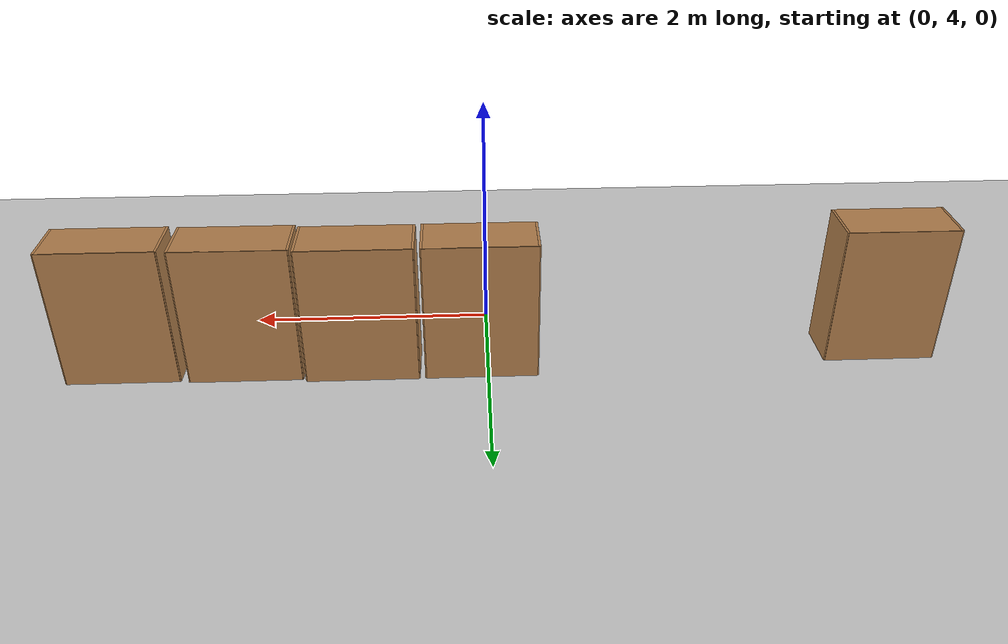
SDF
<sdf version="1.7">
 <world name="default">
  <model name="ground_plane">
   <static>1</static>
   <link name="link">
    <collision name="collision">
     <geometry><plane><normal>0 0 1</normal><size>100 100</size></plane></geometry>
     <surface><friction><ode><mu>100</mu><mu2>50</mu2></ode></friction></surface>
    </collision>
    <visual name="visual">
     <cast_shadows>0</cast_shadows>
     <geometry><plane><normal>0 0 1</normal><size>100 100</size></plane></geometry>
     <material>
      <script><uri>file://media/materials/scripts/gazebo.material</uri><name>Gazebo/Grey</name></script>
     </material>
    </visual>
   </link>
  </model>
  <model name="bookshelf">
   <static>1</static>
   <link name="link">
    <inertial><mass>1</mass></inertial>
    <collision name="back">
     <pose>0 0.005 0.6 0 -0 0</pose>
     <geometry><box><size>0.9 0.01 1.2</size></box></geometry>
    </collision>
    <visual name="visual1">
     <pose>0 0.005 0.6 0 -0 0</pose>
     <geometry><box><size>0.9 0.01 1.2</size></box></geometry>
     <material>
      <script><uri>file://media/materials/scripts/gazebo.material</uri><name>Gazebo/Wood</name></script>
     </material>
    </visual>
    <collision name="left_side">
     <pose>0.45 -0.195 0.6 0 -0 0</pose>
     <geometry><box><size>0.02 0.4 1.2</size></box></geometry>
    </collision>
    <visual name="visual2">
     <pose>0.45 -0.195 0.6 0 -0 0</pose>
     <geometry><box><size>0.02 0.4 1.2</size></box></geometry>
     <material>
      <script><uri>file://media/materials/scripts/gazebo.material</uri><name>Gazebo/Wood</name></script>
     </material>
    </visual>
    <collision name="right_side">
     <pose>-0.45 -0.195 0.6 0 -0 0</pose>
     <geometry><box><size>0.02 0.4 1.2</size></box></geometry>
    </collision>
    <visual name="visual3">
     <pose>-0.45 -0.195 0.6 0 -0 0</pose>
     <geometry><box><size>0.02 0.4 1.2</size></box></geometry>
     <material>
      <script><uri>file://media/materials/scripts/gazebo.material</uri><name>Gazebo/Wood</name></script>
     </material>
    </visual>
    <collision name="bottom">
     <pose>0 -0.195 0.03 0 -0 0</pose>
     <geometry><box><size>0.88 0.4 0.06</size></box></geometry>
    </collision>
    <visual name="visual4">
     <pose>0 -0.195 0.03 0 -0 0</pose>
     <geometry><box><size>0.88 0.4 0.06</size></box></geometry>
     <material>
      <script><uri>file://media/materials/scripts/gazebo.material</uri><name>Gazebo/Wood</name></script>
     </material>
    </visual>
    <collision name="top">
     <pose>0 -0.195 1.19 0 -0 0</pose>
     <geometry><box><size>0.88 0.4 0.02</size></box></geometry>
    </collision>
    <visual name="visual5">
     <pose>0 -0.195 1.19 0 -0 0</pose>
     <geometry><box><size>0.88 0.4 0.02</size></box></geometry>
     <material>
      <script><uri>file://media/materials/scripts/gazebo.material</uri><name>Gazebo/Wood</name></script>
     </material>
    </visual>
    <collision name="low_shelf">
     <pose>0 -0.195 0.43 0 -0 0</pose>
     <geometry><box><size>0.88 0.4 0.02</size></box></geometry>
    </collision>
    <visual name="visual6">
     <pose>0 -0.195 0.43 0 -0 0</pose>
     <geometry><box><size>0.88 0.4 0.02</size></box></geometry>
     <material>
      <script><uri>file://media/materials/scripts/gazebo.material</uri><name>Gazebo/Wood</name></script>
     </material>
    </visual>
    <collision name="high_shelf">
     <pose>0 -0.195 0.8 0 -0 0</pose>
     <geometry><box><size>0.88 0.4 0.02</size></box></geometry>
    </collision>
    <visual name="visual7">
     <pose>0 -0.195 0.8 0 -0 0</pose>
     <geometry><box><size>0.88 0.4 0.02</size></box></geometry>
     <material>
      <script><uri>file://media/materials/scripts/gazebo.material</uri><name>Gazebo/Wood</name></script>
     </material>
    </visual>
   </link>
   <pose>0.052357 4.90916 0 0 -0 0</pose>
  </model>
  <model name="bookshelf_clone">
   <static>1</static>
   <link name="link">
    <inertial><mass>1</mass></inertial>
    <collision name="back">
     <pose>0 0.005 0.6 0 -0 0</pose>
     <geometry><box><size>0.9 0.01 1.2</size></box></geometry>
    </collision>
    <visual name="visual1">
     <pose>0 0.005 0.6 0 -0 0</pose>
     <geometry><box><size>0.9 0.01 1.2</size></box></geometry>
     <material>
      <script><uri>file://media/materials/scripts/gazebo.material</uri><name>Gazebo/Wood</name></script>
     </material>
    </visual>
    <collision name="left_side">
     <pose>0.45 -0.195 0.6 0 -0 0</pose>
     <geometry><box><size>0.02 0.4 1.2</size></box></geometry>
    </collision>
    <visual name="visual2">
     <pose>0.45 -0.195 0.6 0 -0 0</pose>
     <geometry><box><size>0.02 0.4 1.2</size></box></geometry>
     <material>
      <script><uri>file://media/materials/scripts/gazebo.material</uri><name>Gazebo/Wood</name></script>
     </material>
    </visual>
    <collision name="right_side">
     <pose>-0.45 -0.195 0.6 0 -0 0</pose>
     <geometry><box><size>0.02 0.4 1.2</size></box></geometry>
    </collision>
    <visual name="visual3">
     <pose>-0.45 -0.195 0.6 0 -0 0</pose>
     <geometry><box><size>0.02 0.4 1.2</size></box></geometry>
     <material>
      <script><uri>file://media/materials/scripts/gazebo.material</uri><name>Gazebo/Wood</name></script>
     </material>
    </visual>
    <collision name="bottom">
     <pose>0 -0.195 0.03 0 -0 0</pose>
     <geometry><box><size>0.88 0.4 0.06</size></box></geometry>
    </collision>
    <visual name="visual4">
     <pose>0 -0.195 0.03 0 -0 0</pose>
     <geometry><box><size>0.88 0.4 0.06</size></box></geometry>
     <material>
      <script><uri>file://media/materials/scripts/gazebo.material</uri><name>Gazebo/Wood</name></script>
     </material>
    </visual>
    <collision name="top">
     <pose>0 -0.195 1.19 0 -0 0</pose>
     <geometry><box><size>0.88 0.4 0.02</size></box></geometry>
    </collision>
    <visual name="visual5">
     <pose>0 -0.195 1.19 0 -0 0</pose>
     <geometry><box><size>0.88 0.4 0.02</size></box></geometry>
     <material>
      <script><uri>file://media/materials/scripts/gazebo.material</uri><name>Gazebo/Wood</name></script>
     </material>
    </visual>
    <collision name="low_shelf">
     <pose>0 -0.195 0.43 0 -0 0</pose>
     <geometry><box><size>0.88 0.4 0.02</size></box></geometry>
    </collision>
    <visual name="visual6">
     <pose>0 -0.195 0.43 0 -0 0</pose>
     <geometry><box><size>0.88 0.4 0.02</size></box></geometry>
     <material>
      <script><uri>file://media/materials/scripts/gazebo.material</uri><name>Gazebo/Wood</name></script>
     </material>
    </visual>
    <collision name="high_shelf">
     <pose>0 -0.195 0.8 0 -0 0</pose>
     <geometry><box><size>0.88 0.4 0.02</size></box></geometry>
    </collision>
    <visual name="visual7">
     <pose>0 -0.195 0.8 0 -0 0</pose>
     <geometry><box><size>0.88 0.4 0.02</size></box></geometry>
     <material>
      <script><uri>file://media/materials/scripts/gazebo.material</uri><name>Gazebo/Wood</name></script>
     </material>
    </visual>
   </link>
   <pose>1.01366 4.91194 0 0 -0 0</pose>
  </model>
  <model name="bookshelf_clone_0">
   <static>1</static>
   <link name="link">
    <inertial><mass>1</mass></inertial>
    <collision name="back">
     <pose>0 0.005 0.6 0 -0 0</pose>
     <geometry><box><size>0.9 0.01 1.2</size></box></geometry>
    </collision>
    <visual name="visual1">
     <pose>0 0.005 0.6 0 -0 0</pose>
     <geometry><box><size>0.9 0.01 1.2</size></box></geometry>
     <material>
      <script><uri>file://media/materials/scripts/gazebo.material</uri><name>Gazebo/Wood</name></script>
     </material>
    </visual>
    <collision name="left_side">
     <pose>0.45 -0.195 0.6 0 -0 0</pose>
     <geometry><box><size>0.02 0.4 1.2</size></box></geometry>
    </collision>
    <visual name="visual2">
     <pose>0.45 -0.195 0.6 0 -0 0</pose>
     <geometry><box><size>0.02 0.4 1.2</size></box></geometry>
     <material>
      <script><uri>file://media/materials/scripts/gazebo.material</uri><name>Gazebo/Wood</name></script>
     </material>
    </visual>
    <collision name="right_side">
     <pose>-0.45 -0.195 0.6 0 -0 0</pose>
     <geometry><box><size>0.02 0.4 1.2</size></box></geometry>
    </collision>
    <visual name="visual3">
     <pose>-0.45 -0.195 0.6 0 -0 0</pose>
     <geometry><box><size>0.02 0.4 1.2</size></box></geometry>
     <material>
      <script><uri>file://media/materials/scripts/gazebo.material</uri><name>Gazebo/Wood</name></script>
     </material>
    </visual>
    <collision name="bottom">
     <pose>0 -0.195 0.03 0 -0 0</pose>
     <geometry><box><size>0.88 0.4 0.06</size></box></geometry>
    </collision>
    <visual name="visual4">
     <pose>0 -0.195 0.03 0 -0 0</pose>
     <geometry><box><size>0.88 0.4 0.06</size></box></geometry>
     <material>
      <script><uri>file://media/materials/scripts/gazebo.material</uri><name>Gazebo/Wood</name></script>
     </material>
    </visual>
    <collision name="top">
     <pose>0 -0.195 1.19 0 -0 0</pose>
     <geometry><box><size>0.88 0.4 0.02</size></box></geometry>
    </collision>
    <visual name="visual5">
     <pose>0 -0.195 1.19 0 -0 0</pose>
     <geometry><box><size>0.88 0.4 0.02</size></box></geometry>
     <material>
      <script><uri>file://media/materials/scripts/gazebo.material</uri><name>Gazebo/Wood</name></script>
     </material>
    </visual>
    <collision name="low_shelf">
     <pose>0 -0.195 0.43 0 -0 0</pose>
     <geometry><box><size>0.88 0.4 0.02</size></box></geometry>
    </collision>
    <visual name="visual6">
     <pose>0 -0.195 0.43 0 -0 0</pose>
     <geometry><box><size>0.88 0.4 0.02</size></box></geometry>
     <material>
      <script><uri>file://media/materials/scripts/gazebo.material</uri><name>Gazebo/Wood</name></script>
     </material>
    </visual>
    <collision name="high_shelf">
     <pose>0 -0.195 0.8 0 -0 0</pose>
     <geometry><box><size>0.88 0.4 0.02</size></box></geometry>
    </collision>
    <visual name="visual7">
     <pose>0 -0.195 0.8 0 -0 0</pose>
     <geometry><box><size>0.88 0.4 0.02</size></box></geometry>
     <material>
      <script><uri>file://media/materials/scripts/gazebo.material</uri><name>Gazebo/Wood</name></script>
     </material>
    </visual>
   </link>
   <pose>1.95405 4.88392 0 0 -0 0</pose>
  </model>
  <model name="bookshelf_clone_1">
   <static>1</static>
   <link name="link">
    <inertial><mass>1</mass></inertial>
    <collision name="back">
     <pose>0 0.005 0.6 0 -0 0</pose>
     <geometry><box><size>0.9 0.01 1.2</size></box></geometry>
    </collision>
    <visual name="visual1">
     <pose>0 0.005 0.6 0 -0 0</pose>
     <geometry><box><size>0.9 0.01 1.2</size></box></geometry>
     <material>
      <script><uri>file://media/materials/scripts/gazebo.material</uri><name>Gazebo/Wood</name></script>
     </material>
    </visual>
    <collision name="left_side">
     <pose>0.45 -0.195 0.6 0 -0 0</pose>
     <geometry><box><size>0.02 0.4 1.2</size></box></geometry>
    </collision>
    <visual name="visual2">
     <pose>0.45 -0.195 0.6 0 -0 0</pose>
     <geometry><box><size>0.02 0.4 1.2</size></box></geometry>
     <material>
      <script><uri>file://media/materials/scripts/gazebo.material</uri><name>Gazebo/Wood</name></script>
     </material>
    </visual>
    <collision name="right_side">
     <pose>-0.45 -0.195 0.6 0 -0 0</pose>
     <geometry><box><size>0.02 0.4 1.2</size></box></geometry>
    </collision>
    <visual name="visual3">
     <pose>-0.45 -0.195 0.6 0 -0 0</pose>
     <geometry><box><size>0.02 0.4 1.2</size></box></geometry>
     <material>
      <script><uri>file://media/materials/scripts/gazebo.material</uri><name>Gazebo/Wood</name></script>
     </material>
    </visual>
    <collision name="bottom">
     <pose>0 -0.195 0.03 0 -0 0</pose>
     <geometry><box><size>0.88 0.4 0.06</size></box></geometry>
    </collision>
    <visual name="visual4">
     <pose>0 -0.195 0.03 0 -0 0</pose>
     <geometry><box><size>0.88 0.4 0.06</size></box></geometry>
     <material>
      <script><uri>file://media/materials/scripts/gazebo.material</uri><name>Gazebo/Wood</name></script>
     </material>
    </visual>
    <collision name="top">
     <pose>0 -0.195 1.19 0 -0 0</pose>
     <geometry><box><size>0.88 0.4 0.02</size></box></geometry>
    </collision>
    <visual name="visual5">
     <pose>0 -0.195 1.19 0 -0 0</pose>
     <geometry><box><size>0.88 0.4 0.02</size></box></geometry>
     <material>
      <script><uri>file://media/materials/scripts/gazebo.material</uri><name>Gazebo/Wood</name></script>
     </material>
    </visual>
    <collision name="low_shelf">
     <pose>0 -0.195 0.43 0 -0 0</pose>
     <geometry><box><size>0.88 0.4 0.02</size></box></geometry>
    </collision>
    <visual name="visual6">
     <pose>0 -0.195 0.43 0 -0 0</pose>
     <geometry><box><size>0.88 0.4 0.02</size></box></geometry>
     <material>
      <script><uri>file://media/materials/scripts/gazebo.material</uri><name>Gazebo/Wood</name></script>
     </material>
    </visual>
    <collision name="high_shelf">
     <pose>0 -0.195 0.8 0 -0 0</pose>
     <geometry><box><size>0.88 0.4 0.02</size></box></geometry>
    </collision>
    <visual name="visual7">
     <pose>0 -0.195 0.8 0 -0 0</pose>
     <geometry><box><size>0.88 0.4 0.02</size></box></geometry>
     <material>
      <script><uri>file://media/materials/scripts/gazebo.material</uri><name>Gazebo/Wood</name></script>
     </material>
    </visual>
   </link>
   <pose>2.93862 4.86876 0 0 -0 0</pose>
  </model>
  <model name="bookshelf_1">
   <static>1</static>
   <link name="link">
    <inertial><mass>1</mass></inertial>
    <collision name="back">
     <pose>0 0.005 0.6 0 -0 0</pose>
     <geometry><box><size>0.9 0.01 1.2</size></box></geometry>
    </collision>
    <visual name="visual1">
     <pose>0 0.005 0.6 0 -0 0</pose>
     <geometry><box><size>0.9 0.01 1.2</size></box></geometry>
     <material>
      <script><uri>file://media/materials/scripts/gazebo.material</uri><name>Gazebo/Wood</name></script>
     </material>
    </visual>
    <collision name="left_side">
     <pose>0.45 -0.195 0.6 0 -0 0</pose>
     <geometry><box><size>0.02 0.4 1.2</size></box></geometry>
    </collision>
    <visual name="visual2">
     <pose>0.45 -0.195 0.6 0 -0 0</pose>
     <geometry><box><size>0.02 0.4 1.2</size></box></geometry>
     <material>
      <script><uri>file://media/materials/scripts/gazebo.material</uri><name>Gazebo/Wood</name></script>
     </material>
    </visual>
    <collision name="right_side">
     <pose>-0.45 -0.195 0.6 0 -0 0</pose>
     <geometry><box><size>0.02 0.4 1.2</size></box></geometry>
    </collision>
    <visual name="visual3">
     <pose>-0.45 -0.195 0.6 0 -0 0</pose>
     <geometry><box><size>0.02 0.4 1.2</size></box></geometry>
     <material>
      <script><uri>file://media/materials/scripts/gazebo.material</uri><name>Gazebo/Wood</name></script>
     </material>
    </visual>
    <collision name="bottom">
     <pose>0 -0.195 0.03 0 -0 0</pose>
     <geometry><box><size>0.88 0.4 0.06</size></box></geometry>
    </collision>
    <visual name="visual4">
     <pose>0 -0.195 0.03 0 -0 0</pose>
     <geometry><box><size>0.88 0.4 0.06</size></box></geometry>
     <material>
      <script><uri>file://media/materials/scripts/gazebo.material</uri><name>Gazebo/Wood</name></script>
     </material>
    </visual>
    <collision name="top">
     <pose>0 -0.195 1.19 0 -0 0</pose>
     <geometry><box><size>0.88 0.4 0.02</size></box></geometry>
    </collision>
    <visual name="visual5">
     <pose>0 -0.195 1.19 0 -0 0</pose>
     <geometry><box><size>0.88 0.4 0.02</size></box></geometry>
     <material>
      <script><uri>file://media/materials/scripts/gazebo.material</uri><name>Gazebo/Wood</name></script>
     </material>
    </visual>
    <collision name="low_shelf">
     <pose>0 -0.195 0.43 0 -0 0</pose>
     <geometry><box><size>0.88 0.4 0.02</size></box></geometry>
    </collision>
    <visual name="visual6">
     <pose>0 -0.195 0.43 0 -0 0</pose>
     <geometry><box><size>0.88 0.4 0.02</size></box></geometry>
     <material>
      <script><uri>file://media/materials/scripts/gazebo.material</uri><name>Gazebo/Wood</name></script>
     </material>
    </visual>
    <collision name="high_shelf">
     <pose>0 -0.195 0.8 0 -0 0</pose>
     <geometry><box><size>0.88 0.4 0.02</size></box></geometry>
    </collision>
    <visual name="visual7">
     <pose>0 -0.195 0.8 0 -0 0</pose>
     <geometry><box><size>0.88 0.4 0.02</size></box></geometry>
     <material>
      <script><uri>file://media/materials/scripts/gazebo.material</uri><name>Gazebo/Wood</name></script>
     </material>
    </visual>
   </link>
   <pose>-3.24932 4.80489 0 0 -0 0</pose>
  </model>
 </world>
</sdf>
